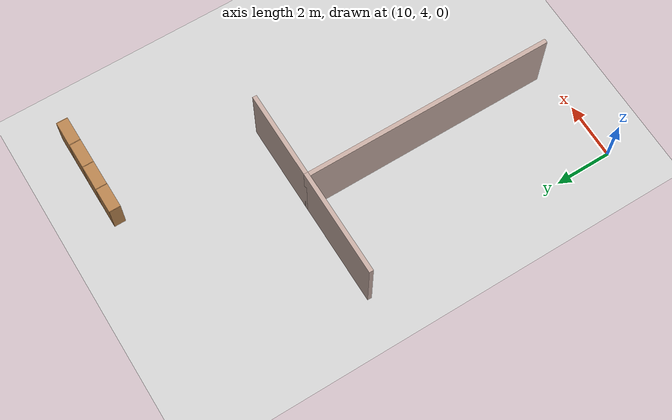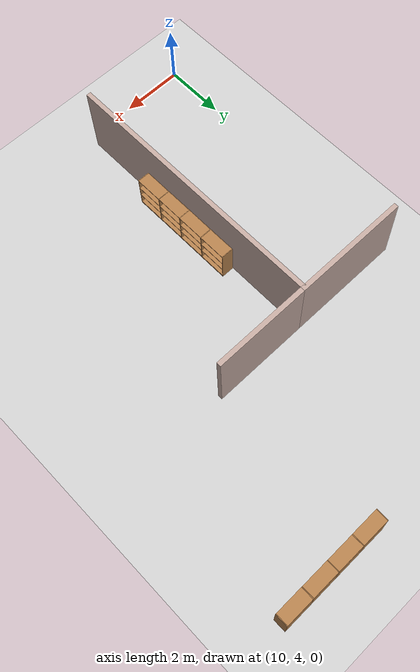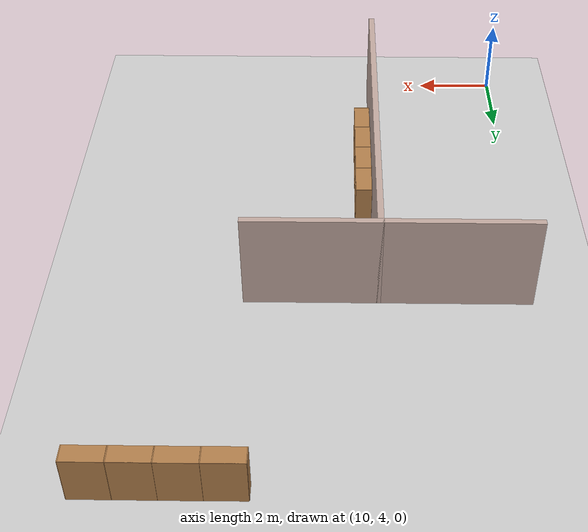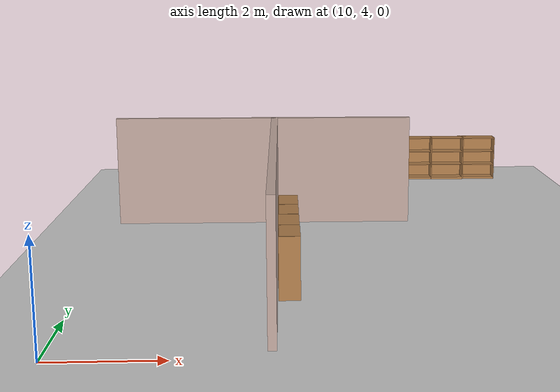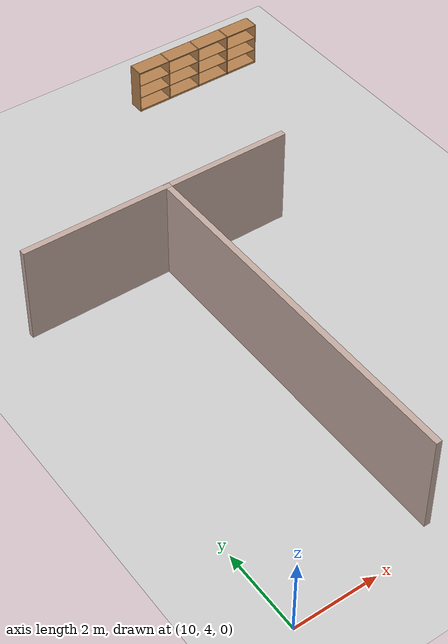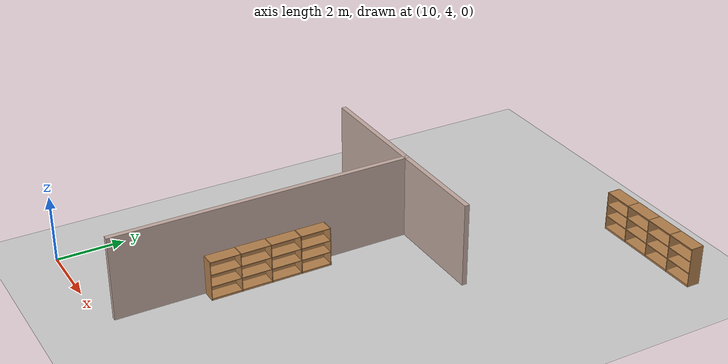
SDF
<sdf version="1.6">
 <world name="default">
  <model name="ground_plane">
   <static>1</static>
   <link name="link">
    <collision name="collision">
     <geometry><plane><normal>0 0 1</normal><size>100 100</size></plane></geometry>
     <surface><friction><ode><mu>100</mu><mu2>50</mu2></ode></friction></surface>
    </collision>
    <visual name="visual">
     <cast_shadows>0</cast_shadows>
     <geometry><plane><normal>0 0 1</normal><size>100 100</size></plane></geometry>
     <material>
      <script><uri>file://media/materials/scripts/gazebo.material</uri><name>Gazebo/Grey</name></script>
     </material>
    </visual>
   </link>
  </model>
  <model name="floor">
   <link name="Wall_146">
    <pose>10.5049 14.5529 0 0 -0 0</pose>
    <visual name="Wall_146_Visual">
     <pose>0 0 1.25 0 -0 0</pose>
     <geometry><box><size>3.75 0.15 2.5</size></box></geometry>
     <material>
      <script><uri>file://media/materials/scripts/gazebo.material</uri><name>Gazebo/Grey</name></script>
      <ambient>0.760784 0.662745 0.627451 1</ambient>
     </material>
     <meta><layer>0</layer></meta>
    </visual>
    <collision name="Wall_146_Collision">
     <pose>0 0 1.25 0 -0 0</pose>
     <geometry><box><size>3.75 0.15 2.5</size></box></geometry>
     <surface>
      <friction>
       <ode><mu>1</mu><mu2>1</mu2><fdir1>0 0 0</fdir1><slip1>0</slip1><slip2>0</slip2></ode>
       <torsional>
        <coefficient>1</coefficient>
        <patch_radius>0</patch_radius>
        <surface_radius>0</surface_radius>
        <use_patch_radius>1</use_patch_radius>
        <ode><slip>0</slip></ode>
       </torsional>
      </friction>
      <bounce><restitution_coefficient>0</restitution_coefficient><threshold>1e+06</threshold></bounce>
      <contact>
       <collide_without_contact>0</collide_without_contact>
       <collide_without_contact_bitmask>1</collide_without_contact_bitmask>
       <collide_bitmask>1</collide_bitmask>
       <ode>
        <soft_cfm>0</soft_cfm>
        <soft_erp>0.2</soft_erp>
        <kp>1e+13</kp>
        <kd>1</kd>
        <max_vel>0.01</max_vel>
        <min_depth>0</min_depth>
       </ode>
       <bullet>
        <split_impulse>1</split_impulse>
        <split_impulse_penetration_threshold>-0.01</split_impulse_penetration_threshold>
        <soft_cfm>0</soft_cfm>
        <soft_erp>0.2</soft_erp>
        <kp>1e+13</kp>
        <kd>1</kd>
       </bullet>
      </contact>
     </surface>
    </collision>
   </link>
   <link name="Wall_147">
    <pose>12.3049 10.1279 0 0 0 -1.5708</pose>
    <visual name="Wall_147_Visual">
     <pose>0 0 1.25 0 -0 0</pose>
     <geometry><box><size>9 0.15 2.5</size></box></geometry>
     <material>
      <script><uri>file://media/materials/scripts/gazebo.material</uri><name>Gazebo/Grey</name></script>
      <ambient>0.760784 0.662745 0.627451 1</ambient>
     </material>
     <meta><layer>0</layer></meta>
    </visual>
    <collision name="Wall_147_Collision">
     <pose>0 0 1.25 0 -0 0</pose>
     <geometry><box><size>9 0.15 2.5</size></box></geometry>
     <surface>
      <friction>
       <ode><mu>1</mu><mu2>1</mu2><fdir1>0 0 0</fdir1><slip1>0</slip1><slip2>0</slip2></ode>
       <torsional>
        <coefficient>1</coefficient>
        <patch_radius>0</patch_radius>
        <surface_radius>0</surface_radius>
        <use_patch_radius>1</use_patch_radius>
        <ode><slip>0</slip></ode>
       </torsional>
      </friction>
      <bounce><restitution_coefficient>0</restitution_coefficient><threshold>1e+06</threshold></bounce>
      <contact>
       <collide_without_contact>0</collide_without_contact>
       <collide_without_contact_bitmask>1</collide_without_contact_bitmask>
       <collide_bitmask>1</collide_bitmask>
       <ode>
        <soft_cfm>0</soft_cfm>
        <soft_erp>0.2</soft_erp>
        <kp>1e+13</kp>
        <kd>1</kd>
        <max_vel>0.01</max_vel>
        <min_depth>0</min_depth>
       </ode>
       <bullet>
        <split_impulse>1</split_impulse>
        <split_impulse_penetration_threshold>-0.01</split_impulse_penetration_threshold>
        <soft_cfm>0</soft_cfm>
        <soft_erp>0.2</soft_erp>
        <kp>1e+13</kp>
        <kd>1</kd>
       </bullet>
      </contact>
     </surface>
    </collision>
   </link>
   <link name="Wall_161">
    <pose>13.8549 14.5529 0 0 -0 0</pose>
    <visual name="Wall_161_Visual">
     <pose>0 0 1.25 0 -0 0</pose>
     <geometry><box><size>3.25 0.15 2.5</size></box></geometry>
     <material>
      <script><uri>file://media/materials/scripts/gazebo.material</uri><name>Gazebo/Grey</name></script>
      <ambient>0.760784 0.662745 0.627451 1</ambient>
     </material>
     <meta><layer>0</layer></meta>
    </visual>
    <collision name="Wall_161_Collision">
     <pose>0 0 1.25 0 -0 0</pose>
     <geometry><box><size>3.25 0.15 2.5</size></box></geometry>
     <surface>
      <friction>
       <ode><mu>1</mu><mu2>1</mu2><fdir1>0 0 0</fdir1><slip1>0</slip1><slip2>0</slip2></ode>
       <torsional>
        <coefficient>1</coefficient>
        <patch_radius>0</patch_radius>
        <surface_radius>0</surface_radius>
        <use_patch_radius>1</use_patch_radius>
        <ode><slip>0</slip></ode>
       </torsional>
      </friction>
      <bounce><restitution_coefficient>0</restitution_coefficient><threshold>1e+06</threshold></bounce>
      <contact>
       <collide_without_contact>0</collide_without_contact>
       <collide_without_contact_bitmask>1</collide_without_contact_bitmask>
       <collide_bitmask>1</collide_bitmask>
       <ode>
        <soft_cfm>0</soft_cfm>
        <soft_erp>0.2</soft_erp>
        <kp>1e+13</kp>
        <kd>1</kd>
        <max_vel>0.01</max_vel>
        <min_depth>0</min_depth>
       </ode>
       <bullet>
        <split_impulse>1</split_impulse>
        <split_impulse_penetration_threshold>-0.01</split_impulse_penetration_threshold>
        <soft_cfm>0</soft_cfm>
        <soft_erp>0.2</soft_erp>
        <kp>1e+13</kp>
        <kd>1</kd>
       </bullet>
      </contact>
     </surface>
    </collision>
   </link>
   <static>1</static>
   <pose>1.26361 -1.27025 0 0 -0 0</pose>
  </model>
  <model name="Bookshelf-4_clone_30">
   <model name="bookshelf">
    <static>1</static>
    <link name="link">
     <inertial><mass>1</mass></inertial>
     <collision name="back">
      <pose>0 0.005 0.6 0 -0 0</pose>
      <geometry><box><size>0.9 0.01 1.2</size></box></geometry>
     </collision>
     <visual name="visual1">
      <pose>0 0.005 0.6 0 -0 0</pose>
      <geometry><box><size>0.9 0.01 1.2</size></box></geometry>
      <material>
       <script><uri>file://media/materials/scripts/gazebo.material</uri><name>Gazebo/Wood</name></script>
      </material>
     </visual>
     <collision name="left_side">
      <pose>0.45 -0.195 0.6 0 -0 0</pose>
      <geometry><box><size>0.02 0.4 1.2</size></box></geometry>
     </collision>
     <visual name="visual2">
      <pose>0.45 -0.195 0.6 0 -0 0</pose>
      <geometry><box><size>0.02 0.4 1.2</size></box></geometry>
      <material>
       <script><uri>file://media/materials/scripts/gazebo.material</uri><name>Gazebo/Wood</name></script>
      </material>
     </visual>
     <collision name="right_side">
      <pose>-0.45 -0.195 0.6 0 -0 0</pose>
      <geometry><box><size>0.02 0.4 1.2</size></box></geometry>
     </collision>
     <visual name="visual3">
      <pose>-0.45 -0.195 0.6 0 -0 0</pose>
      <geometry><box><size>0.02 0.4 1.2</size></box></geometry>
      <material>
       <script><uri>file://media/materials/scripts/gazebo.material</uri><name>Gazebo/Wood</name></script>
      </material>
     </visual>
     <collision name="bottom">
      <pose>0 -0.195 0.03 0 -0 0</pose>
      <geometry><box><size>0.88 0.4 0.06</size></box></geometry>
     </collision>
     <visual name="visual4">
      <pose>0 -0.195 0.03 0 -0 0</pose>
      <geometry><box><size>0.88 0.4 0.06</size></box></geometry>
      <material>
       <script><uri>file://media/materials/scripts/gazebo.material</uri><name>Gazebo/Wood</name></script>
      </material>
     </visual>
     <collision name="top">
      <pose>0 -0.195 1.19 0 -0 0</pose>
      <geometry><box><size>0.88 0.4 0.02</size></box></geometry>
     </collision>
     <visual name="visual5">
      <pose>0 -0.195 1.19 0 -0 0</pose>
      <geometry><box><size>0.88 0.4 0.02</size></box></geometry>
      <material>
       <script><uri>file://media/materials/scripts/gazebo.material</uri><name>Gazebo/Wood</name></script>
      </material>
     </visual>
     <collision name="low_shelf">
      <pose>0 -0.195 0.43 0 -0 0</pose>
      <geometry><box><size>0.88 0.4 0.02</size></box></geometry>
     </collision>
     <visual name="visual6">
      <pose>0 -0.195 0.43 0 -0 0</pose>
      <geometry><box><size>0.88 0.4 0.02</size></box></geometry>
      <material>
       <script><uri>file://media/materials/scripts/gazebo.material</uri><name>Gazebo/Wood</name></script>
      </material>
     </visual>
     <collision name="high_shelf">
      <pose>0 -0.195 0.8 0 -0 0</pose>
      <geometry><box><size>0.88 0.4 0.02</size></box></geometry>
     </collision>
     <visual name="visual7">
      <pose>0 -0.195 0.8 0 -0 0</pose>
      <geometry><box><size>0.88 0.4 0.02</size></box></geometry>
      <material>
       <script><uri>file://media/materials/scripts/gazebo.material</uri><name>Gazebo/Wood</name></script>
      </material>
     </visual>
    </link>
    <pose>-1.35671 -0.002097 0 0 -0 0</pose>
   </model>
   <model name="bookshelf_0">
    <static>1</static>
    <link name="link">
     <inertial><mass>1</mass></inertial>
     <collision name="back">
      <pose>0 0.005 0.6 0 -0 0</pose>
      <geometry><box><size>0.9 0.01 1.2</size></box></geometry>
     </collision>
     <visual name="visual1">
      <pose>0 0.005 0.6 0 -0 0</pose>
      <geometry><box><size>0.9 0.01 1.2</size></box></geometry>
      <material>
       <script><uri>file://media/materials/scripts/gazebo.material</uri><name>Gazebo/Wood</name></script>
      </material>
     </visual>
     <collision name="left_side">
      <pose>0.45 -0.195 0.6 0 -0 0</pose>
      <geometry><box><size>0.02 0.4 1.2</size></box></geometry>
     </collision>
     <visual name="visual2">
      <pose>0.45 -0.195 0.6 0 -0 0</pose>
      <geometry><box><size>0.02 0.4 1.2</size></box></geometry>
      <material>
       <script><uri>file://media/materials/scripts/gazebo.material</uri><name>Gazebo/Wood</name></script>
      </material>
     </visual>
     <collision name="right_side">
      <pose>-0.45 -0.195 0.6 0 -0 0</pose>
      <geometry><box><size>0.02 0.4 1.2</size></box></geometry>
     </collision>
     <visual name="visual3">
      <pose>-0.45 -0.195 0.6 0 -0 0</pose>
      <geometry><box><size>0.02 0.4 1.2</size></box></geometry>
      <material>
       <script><uri>file://media/materials/scripts/gazebo.material</uri><name>Gazebo/Wood</name></script>
      </material>
     </visual>
     <collision name="bottom">
      <pose>0 -0.195 0.03 0 -0 0</pose>
      <geometry><box><size>0.88 0.4 0.06</size></box></geometry>
     </collision>
     <visual name="visual4">
      <pose>0 -0.195 0.03 0 -0 0</pose>
      <geometry><box><size>0.88 0.4 0.06</size></box></geometry>
      <material>
       <script><uri>file://media/materials/scripts/gazebo.material</uri><name>Gazebo/Wood</name></script>
      </material>
     </visual>
     <collision name="top">
      <pose>0 -0.195 1.19 0 -0 0</pose>
      <geometry><box><size>0.88 0.4 0.02</size></box></geometry>
     </collision>
     <visual name="visual5">
      <pose>0 -0.195 1.19 0 -0 0</pose>
      <geometry><box><size>0.88 0.4 0.02</size></box></geometry>
      <material>
       <script><uri>file://media/materials/scripts/gazebo.material</uri><name>Gazebo/Wood</name></script>
      </material>
     </visual>
     <collision name="low_shelf">
      <pose>0 -0.195 0.43 0 -0 0</pose>
      <geometry><box><size>0.88 0.4 0.02</size></box></geometry>
     </collision>
     <visual name="visual6">
      <pose>0 -0.195 0.43 0 -0 0</pose>
      <geometry><box><size>0.88 0.4 0.02</size></box></geometry>
      <material>
       <script><uri>file://media/materials/scripts/gazebo.material</uri><name>Gazebo/Wood</name></script>
      </material>
     </visual>
     <collision name="high_shelf">
      <pose>0 -0.195 0.8 0 -0 0</pose>
      <geometry><box><size>0.88 0.4 0.02</size></box></geometry>
     </collision>
     <visual name="visual7">
      <pose>0 -0.195 0.8 0 -0 0</pose>
      <geometry><box><size>0.88 0.4 0.02</size></box></geometry>
      <material>
       <script><uri>file://media/materials/scripts/gazebo.material</uri><name>Gazebo/Wood</name></script>
      </material>
     </visual>
    </link>
    <pose>-0.452974 0.001386 0 0 -0 0</pose>
   </model>
   <model name="bookshelf_1">
    <static>1</static>
    <link name="link">
     <inertial><mass>1</mass></inertial>
     <collision name="back">
      <pose>0 0.005 0.6 0 -0 0</pose>
      <geometry><box><size>0.9 0.01 1.2</size></box></geometry>
     </collision>
     <visual name="visual1">
      <pose>0 0.005 0.6 0 -0 0</pose>
      <geometry><box><size>0.9 0.01 1.2</size></box></geometry>
      <material>
       <script><uri>file://media/materials/scripts/gazebo.material</uri><name>Gazebo/Wood</name></script>
      </material>
     </visual>
     <collision name="left_side">
      <pose>0.45 -0.195 0.6 0 -0 0</pose>
      <geometry><box><size>0.02 0.4 1.2</size></box></geometry>
     </collision>
     <visual name="visual2">
      <pose>0.45 -0.195 0.6 0 -0 0</pose>
      <geometry><box><size>0.02 0.4 1.2</size></box></geometry>
      <material>
       <script><uri>file://media/materials/scripts/gazebo.material</uri><name>Gazebo/Wood</name></script>
      </material>
     </visual>
     <collision name="right_side">
      <pose>-0.45 -0.195 0.6 0 -0 0</pose>
      <geometry><box><size>0.02 0.4 1.2</size></box></geometry>
     </collision>
     <visual name="visual3">
      <pose>-0.45 -0.195 0.6 0 -0 0</pose>
      <geometry><box><size>0.02 0.4 1.2</size></box></geometry>
      <material>
       <script><uri>file://media/materials/scripts/gazebo.material</uri><name>Gazebo/Wood</name></script>
      </material>
     </visual>
     <collision name="bottom">
      <pose>0 -0.195 0.03 0 -0 0</pose>
      <geometry><box><size>0.88 0.4 0.06</size></box></geometry>
     </collision>
     <visual name="visual4">
      <pose>0 -0.195 0.03 0 -0 0</pose>
      <geometry><box><size>0.88 0.4 0.06</size></box></geometry>
      <material>
       <script><uri>file://media/materials/scripts/gazebo.material</uri><name>Gazebo/Wood</name></script>
      </material>
     </visual>
     <collision name="top">
      <pose>0 -0.195 1.19 0 -0 0</pose>
      <geometry><box><size>0.88 0.4 0.02</size></box></geometry>
     </collision>
     <visual name="visual5">
      <pose>0 -0.195 1.19 0 -0 0</pose>
      <geometry><box><size>0.88 0.4 0.02</size></box></geometry>
      <material>
       <script><uri>file://media/materials/scripts/gazebo.material</uri><name>Gazebo/Wood</name></script>
      </material>
     </visual>
     <collision name="low_shelf">
      <pose>0 -0.195 0.43 0 -0 0</pose>
      <geometry><box><size>0.88 0.4 0.02</size></box></geometry>
     </collision>
     <visual name="visual6">
      <pose>0 -0.195 0.43 0 -0 0</pose>
      <geometry><box><size>0.88 0.4 0.02</size></box></geometry>
      <material>
       <script><uri>file://media/materials/scripts/gazebo.material</uri><name>Gazebo/Wood</name></script>
      </material>
     </visual>
     <collision name="high_shelf">
      <pose>0 -0.195 0.8 0 -0 0</pose>
      <geometry><box><size>0.88 0.4 0.02</size></box></geometry>
     </collision>
     <visual name="visual7">
      <pose>0 -0.195 0.8 0 -0 0</pose>
      <geometry><box><size>0.88 0.4 0.02</size></box></geometry>
      <material>
       <script><uri>file://media/materials/scripts/gazebo.material</uri><name>Gazebo/Wood</name></script>
      </material>
     </visual>
    </link>
    <pose>0.450456 0.000733 0 0 -0 0</pose>
   </model>
   <model name="bookshelf_2">
    <static>1</static>
    <link name="link">
     <inertial><mass>1</mass></inertial>
     <collision name="back">
      <pose>0 0.005 0.6 0 -0 0</pose>
      <geometry><box><size>0.9 0.01 1.2</size></box></geometry>
     </collision>
     <visual name="visual1">
      <pose>0 0.005 0.6 0 -0 0</pose>
      <geometry><box><size>0.9 0.01 1.2</size></box></geometry>
      <material>
       <script><uri>file://media/materials/scripts/gazebo.material</uri><name>Gazebo/Wood</name></script>
      </material>
     </visual>
     <collision name="left_side">
      <pose>0.45 -0.195 0.6 0 -0 0</pose>
      <geometry><box><size>0.02 0.4 1.2</size></box></geometry>
     </collision>
     <visual name="visual2">
      <pose>0.45 -0.195 0.6 0 -0 0</pose>
      <geometry><box><size>0.02 0.4 1.2</size></box></geometry>
      <material>
       <script><uri>file://media/materials/scripts/gazebo.material</uri><name>Gazebo/Wood</name></script>
      </material>
     </visual>
     <collision name="right_side">
      <pose>-0.45 -0.195 0.6 0 -0 0</pose>
      <geometry><box><size>0.02 0.4 1.2</size></box></geometry>
     </collision>
     <visual name="visual3">
      <pose>-0.45 -0.195 0.6 0 -0 0</pose>
      <geometry><box><size>0.02 0.4 1.2</size></box></geometry>
      <material>
       <script><uri>file://media/materials/scripts/gazebo.material</uri><name>Gazebo/Wood</name></script>
      </material>
     </visual>
     <collision name="bottom">
      <pose>0 -0.195 0.03 0 -0 0</pose>
      <geometry><box><size>0.88 0.4 0.06</size></box></geometry>
     </collision>
     <visual name="visual4">
      <pose>0 -0.195 0.03 0 -0 0</pose>
      <geometry><box><size>0.88 0.4 0.06</size></box></geometry>
      <material>
       <script><uri>file://media/materials/scripts/gazebo.material</uri><name>Gazebo/Wood</name></script>
      </material>
     </visual>
     <collision name="top">
      <pose>0 -0.195 1.19 0 -0 0</pose>
      <geometry><box><size>0.88 0.4 0.02</size></box></geometry>
     </collision>
     <visual name="visual5">
      <pose>0 -0.195 1.19 0 -0 0</pose>
      <geometry><box><size>0.88 0.4 0.02</size></box></geometry>
      <material>
       <script><uri>file://media/materials/scripts/gazebo.material</uri><name>Gazebo/Wood</name></script>
      </material>
     </visual>
     <collision name="low_shelf">
      <pose>0 -0.195 0.43 0 -0 0</pose>
      <geometry><box><size>0.88 0.4 0.02</size></box></geometry>
     </collision>
     <visual name="visual6">
      <pose>0 -0.195 0.43 0 -0 0</pose>
      <geometry><box><size>0.88 0.4 0.02</size></box></geometry>
      <material>
       <script><uri>file://media/materials/scripts/gazebo.material</uri><name>Gazebo/Wood</name></script>
      </material>
     </visual>
     <collision name="high_shelf">
      <pose>0 -0.195 0.8 0 -0 0</pose>
      <geometry><box><size>0.88 0.4 0.02</size></box></geometry>
     </collision>
     <visual name="visual7">
      <pose>0 -0.195 0.8 0 -0 0</pose>
      <geometry><box><size>0.88 0.4 0.02</size></box></geometry>
      <material>
       <script><uri>file://media/materials/scripts/gazebo.material</uri><name>Gazebo/Wood</name></script>
      </material>
     </visual>
    </link>
    <pose>1.35922 -1.7e-05 0 0 -0 0</pose>
   </model>
   <static>0</static>
   <pose>18.0458 18.8996 0 0 -0 0</pose>
  </model>
  <model name="Bookshelf-4_clone_31_clone_2">
   <model name="bookshelf">
    <static>1</static>
    <link name="link">
     <inertial><mass>1</mass></inertial>
     <collision name="back">
      <pose>0 0.005 0.6 0 -0 0</pose>
      <geometry><box><size>0.9 0.01 1.2</size></box></geometry>
     </collision>
     <visual name="visual1">
      <pose>0 0.005 0.6 0 -0 0</pose>
      <geometry><box><size>0.9 0.01 1.2</size></box></geometry>
      <material>
       <script><uri>file://media/materials/scripts/gazebo.material</uri><name>Gazebo/Wood</name></script>
      </material>
     </visual>
     <collision name="left_side">
      <pose>0.45 -0.195 0.6 0 -0 0</pose>
      <geometry><box><size>0.02 0.4 1.2</size></box></geometry>
     </collision>
     <visual name="visual2">
      <pose>0.45 -0.195 0.6 0 -0 0</pose>
      <geometry><box><size>0.02 0.4 1.2</size></box></geometry>
      <material>
       <script><uri>file://media/materials/scripts/gazebo.material</uri><name>Gazebo/Wood</name></script>
      </material>
     </visual>
     <collision name="right_side">
      <pose>-0.45 -0.195 0.6 0 -0 0</pose>
      <geometry><box><size>0.02 0.4 1.2</size></box></geometry>
     </collision>
     <visual name="visual3">
      <pose>-0.45 -0.195 0.6 0 -0 0</pose>
      <geometry><box><size>0.02 0.4 1.2</size></box></geometry>
      <material>
       <script><uri>file://media/materials/scripts/gazebo.material</uri><name>Gazebo/Wood</name></script>
      </material>
     </visual>
     <collision name="bottom">
      <pose>0 -0.195 0.03 0 -0 0</pose>
      <geometry><box><size>0.88 0.4 0.06</size></box></geometry>
     </collision>
     <visual name="visual4">
      <pose>0 -0.195 0.03 0 -0 0</pose>
      <geometry><box><size>0.88 0.4 0.06</size></box></geometry>
      <material>
       <script><uri>file://media/materials/scripts/gazebo.material</uri><name>Gazebo/Wood</name></script>
      </material>
     </visual>
     <collision name="top">
      <pose>0 -0.195 1.19 0 -0 0</pose>
      <geometry><box><size>0.88 0.4 0.02</size></box></geometry>
     </collision>
     <visual name="visual5">
      <pose>0 -0.195 1.19 0 -0 0</pose>
      <geometry><box><size>0.88 0.4 0.02</size></box></geometry>
      <material>
       <script><uri>file://media/materials/scripts/gazebo.material</uri><name>Gazebo/Wood</name></script>
      </material>
     </visual>
     <collision name="low_shelf">
      <pose>0 -0.195 0.43 0 -0 0</pose>
      <geometry><box><size>0.88 0.4 0.02</size></box></geometry>
     </collision>
     <visual name="visual6">
      <pose>0 -0.195 0.43 0 -0 0</pose>
      <geometry><box><size>0.88 0.4 0.02</size></box></geometry>
      <material>
       <script><uri>file://media/materials/scripts/gazebo.material</uri><name>Gazebo/Wood</name></script>
      </material>
     </visual>
     <collision name="high_shelf">
      <pose>0 -0.195 0.8 0 -0 0</pose>
      <geometry><box><size>0.88 0.4 0.02</size></box></geometry>
     </collision>
     <visual name="visual7">
      <pose>0 -0.195 0.8 0 -0 0</pose>
      <geometry><box><size>0.88 0.4 0.02</size></box></geometry>
      <material>
       <script><uri>file://media/materials/scripts/gazebo.material</uri><name>Gazebo/Wood</name></script>
      </material>
     </visual>
    </link>
    <pose>-1.35671 -0.002097 0 0 -0 0</pose>
   </model>
   <model name="bookshelf_0">
    <static>1</static>
    <link name="link">
     <inertial><mass>1</mass></inertial>
     <collision name="back">
      <pose>0 0.005 0.6 0 -0 0</pose>
      <geometry><box><size>0.9 0.01 1.2</size></box></geometry>
     </collision>
     <visual name="visual1">
      <pose>0 0.005 0.6 0 -0 0</pose>
      <geometry><box><size>0.9 0.01 1.2</size></box></geometry>
      <material>
       <script><uri>file://media/materials/scripts/gazebo.material</uri><name>Gazebo/Wood</name></script>
      </material>
     </visual>
     <collision name="left_side">
      <pose>0.45 -0.195 0.6 0 -0 0</pose>
      <geometry><box><size>0.02 0.4 1.2</size></box></geometry>
     </collision>
     <visual name="visual2">
      <pose>0.45 -0.195 0.6 0 -0 0</pose>
      <geometry><box><size>0.02 0.4 1.2</size></box></geometry>
      <material>
       <script><uri>file://media/materials/scripts/gazebo.material</uri><name>Gazebo/Wood</name></script>
      </material>
     </visual>
     <collision name="right_side">
      <pose>-0.45 -0.195 0.6 0 -0 0</pose>
      <geometry><box><size>0.02 0.4 1.2</size></box></geometry>
     </collision>
     <visual name="visual3">
      <pose>-0.45 -0.195 0.6 0 -0 0</pose>
      <geometry><box><size>0.02 0.4 1.2</size></box></geometry>
      <material>
       <script><uri>file://media/materials/scripts/gazebo.material</uri><name>Gazebo/Wood</name></script>
      </material>
     </visual>
     <collision name="bottom">
      <pose>0 -0.195 0.03 0 -0 0</pose>
      <geometry><box><size>0.88 0.4 0.06</size></box></geometry>
     </collision>
     <visual name="visual4">
      <pose>0 -0.195 0.03 0 -0 0</pose>
      <geometry><box><size>0.88 0.4 0.06</size></box></geometry>
      <material>
       <script><uri>file://media/materials/scripts/gazebo.material</uri><name>Gazebo/Wood</name></script>
      </material>
     </visual>
     <collision name="top">
      <pose>0 -0.195 1.19 0 -0 0</pose>
      <geometry><box><size>0.88 0.4 0.02</size></box></geometry>
     </collision>
     <visual name="visual5">
      <pose>0 -0.195 1.19 0 -0 0</pose>
      <geometry><box><size>0.88 0.4 0.02</size></box></geometry>
      <material>
       <script><uri>file://media/materials/scripts/gazebo.material</uri><name>Gazebo/Wood</name></script>
      </material>
     </visual>
     <collision name="low_shelf">
      <pose>0 -0.195 0.43 0 -0 0</pose>
      <geometry><box><size>0.88 0.4 0.02</size></box></geometry>
     </collision>
     <visual name="visual6">
      <pose>0 -0.195 0.43 0 -0 0</pose>
      <geometry><box><size>0.88 0.4 0.02</size></box></geometry>
      <material>
       <script><uri>file://media/materials/scripts/gazebo.material</uri><name>Gazebo/Wood</name></script>
      </material>
     </visual>
     <collision name="high_shelf">
      <pose>0 -0.195 0.8 0 -0 0</pose>
      <geometry><box><size>0.88 0.4 0.02</size></box></geometry>
     </collision>
     <visual name="visual7">
      <pose>0 -0.195 0.8 0 -0 0</pose>
      <geometry><box><size>0.88 0.4 0.02</size></box></geometry>
      <material>
       <script><uri>file://media/materials/scripts/gazebo.material</uri><name>Gazebo/Wood</name></script>
      </material>
     </visual>
    </link>
    <pose>-0.452974 0.001386 0 0 -0 0</pose>
   </model>
   <model name="bookshelf_1">
    <static>1</static>
    <link name="link">
     <inertial><mass>1</mass></inertial>
     <collision name="back">
      <pose>0 0.005 0.6 0 -0 0</pose>
      <geometry><box><size>0.9 0.01 1.2</size></box></geometry>
     </collision>
     <visual name="visual1">
      <pose>0 0.005 0.6 0 -0 0</pose>
      <geometry><box><size>0.9 0.01 1.2</size></box></geometry>
      <material>
       <script><uri>file://media/materials/scripts/gazebo.material</uri><name>Gazebo/Wood</name></script>
      </material>
     </visual>
     <collision name="left_side">
      <pose>0.45 -0.195 0.6 0 -0 0</pose>
      <geometry><box><size>0.02 0.4 1.2</size></box></geometry>
     </collision>
     <visual name="visual2">
      <pose>0.45 -0.195 0.6 0 -0 0</pose>
      <geometry><box><size>0.02 0.4 1.2</size></box></geometry>
      <material>
       <script><uri>file://media/materials/scripts/gazebo.material</uri><name>Gazebo/Wood</name></script>
      </material>
     </visual>
     <collision name="right_side">
      <pose>-0.45 -0.195 0.6 0 -0 0</pose>
      <geometry><box><size>0.02 0.4 1.2</size></box></geometry>
     </collision>
     <visual name="visual3">
      <pose>-0.45 -0.195 0.6 0 -0 0</pose>
      <geometry><box><size>0.02 0.4 1.2</size></box></geometry>
      <material>
       <script><uri>file://media/materials/scripts/gazebo.material</uri><name>Gazebo/Wood</name></script>
      </material>
     </visual>
     <collision name="bottom">
      <pose>0 -0.195 0.03 0 -0 0</pose>
      <geometry><box><size>0.88 0.4 0.06</size></box></geometry>
     </collision>
     <visual name="visual4">
      <pose>0 -0.195 0.03 0 -0 0</pose>
      <geometry><box><size>0.88 0.4 0.06</size></box></geometry>
      <material>
       <script><uri>file://media/materials/scripts/gazebo.material</uri><name>Gazebo/Wood</name></script>
      </material>
     </visual>
     <collision name="top">
      <pose>0 -0.195 1.19 0 -0 0</pose>
      <geometry><box><size>0.88 0.4 0.02</size></box></geometry>
     </collision>
     <visual name="visual5">
      <pose>0 -0.195 1.19 0 -0 0</pose>
      <geometry><box><size>0.88 0.4 0.02</size></box></geometry>
      <material>
       <script><uri>file://media/materials/scripts/gazebo.material</uri><name>Gazebo/Wood</name></script>
      </material>
     </visual>
     <collision name="low_shelf">
      <pose>0 -0.195 0.43 0 -0 0</pose>
      <geometry><box><size>0.88 0.4 0.02</size></box></geometry>
     </collision>
     <visual name="visual6">
      <pose>0 -0.195 0.43 0 -0 0</pose>
      <geometry><box><size>0.88 0.4 0.02</size></box></geometry>
      <material>
       <script><uri>file://media/materials/scripts/gazebo.material</uri><name>Gazebo/Wood</name></script>
      </material>
     </visual>
     <collision name="high_shelf">
      <pose>0 -0.195 0.8 0 -0 0</pose>
      <geometry><box><size>0.88 0.4 0.02</size></box></geometry>
     </collision>
     <visual name="visual7">
      <pose>0 -0.195 0.8 0 -0 0</pose>
      <geometry><box><size>0.88 0.4 0.02</size></box></geometry>
      <material>
       <script><uri>file://media/materials/scripts/gazebo.material</uri><name>Gazebo/Wood</name></script>
      </material>
     </visual>
    </link>
    <pose>0.450456 0.000733 0 0 -0 0</pose>
   </model>
   <model name="bookshelf_2">
    <static>1</static>
    <link name="link">
     <inertial><mass>1</mass></inertial>
     <collision name="back">
      <pose>0 0.005 0.6 0 -0 0</pose>
      <geometry><box><size>0.9 0.01 1.2</size></box></geometry>
     </collision>
     <visual name="visual1">
      <pose>0 0.005 0.6 0 -0 0</pose>
      <geometry><box><size>0.9 0.01 1.2</size></box></geometry>
      <material>
       <script><uri>file://media/materials/scripts/gazebo.material</uri><name>Gazebo/Wood</name></script>
      </material>
     </visual>
     <collision name="left_side">
      <pose>0.45 -0.195 0.6 0 -0 0</pose>
      <geometry><box><size>0.02 0.4 1.2</size></box></geometry>
     </collision>
     <visual name="visual2">
      <pose>0.45 -0.195 0.6 0 -0 0</pose>
      <geometry><box><size>0.02 0.4 1.2</size></box></geometry>
      <material>
       <script><uri>file://media/materials/scripts/gazebo.material</uri><name>Gazebo/Wood</name></script>
      </material>
     </visual>
     <collision name="right_side">
      <pose>-0.45 -0.195 0.6 0 -0 0</pose>
      <geometry><box><size>0.02 0.4 1.2</size></box></geometry>
     </collision>
     <visual name="visual3">
      <pose>-0.45 -0.195 0.6 0 -0 0</pose>
      <geometry><box><size>0.02 0.4 1.2</size></box></geometry>
      <material>
       <script><uri>file://media/materials/scripts/gazebo.material</uri><name>Gazebo/Wood</name></script>
      </material>
     </visual>
     <collision name="bottom">
      <pose>0 -0.195 0.03 0 -0 0</pose>
      <geometry><box><size>0.88 0.4 0.06</size></box></geometry>
     </collision>
     <visual name="visual4">
      <pose>0 -0.195 0.03 0 -0 0</pose>
      <geometry><box><size>0.88 0.4 0.06</size></box></geometry>
      <material>
       <script><uri>file://media/materials/scripts/gazebo.material</uri><name>Gazebo/Wood</name></script>
      </material>
     </visual>
     <collision name="top">
      <pose>0 -0.195 1.19 0 -0 0</pose>
      <geometry><box><size>0.88 0.4 0.02</size></box></geometry>
     </collision>
     <visual name="visual5">
      <pose>0 -0.195 1.19 0 -0 0</pose>
      <geometry><box><size>0.88 0.4 0.02</size></box></geometry>
      <material>
       <script><uri>file://media/materials/scripts/gazebo.material</uri><name>Gazebo/Wood</name></script>
      </material>
     </visual>
     <collision name="low_shelf">
      <pose>0 -0.195 0.43 0 -0 0</pose>
      <geometry><box><size>0.88 0.4 0.02</size></box></geometry>
     </collision>
     <visual name="visual6">
      <pose>0 -0.195 0.43 0 -0 0</pose>
      <geometry><box><size>0.88 0.4 0.02</size></box></geometry>
      <material>
       <script><uri>file://media/materials/scripts/gazebo.material</uri><name>Gazebo/Wood</name></script>
      </material>
     </visual>
     <collision name="high_shelf">
      <pose>0 -0.195 0.8 0 -0 0</pose>
      <geometry><box><size>0.88 0.4 0.02</size></box></geometry>
     </collision>
     <visual name="visual7">
      <pose>0 -0.195 0.8 0 -0 0</pose>
      <geometry><box><size>0.88 0.4 0.02</size></box></geometry>
      <material>
       <script><uri>file://media/materials/scripts/gazebo.material</uri><name>Gazebo/Wood</name></script>
      </material>
     </visual>
    </link>
    <pose>1.35922 -1.7e-05 0 0 -0 0</pose>
   </model>
   <static>0</static>
   <pose>13.6669 8.77566 0 0 -0 1.5707</pose>
  </model>
 </world>
</sdf>
